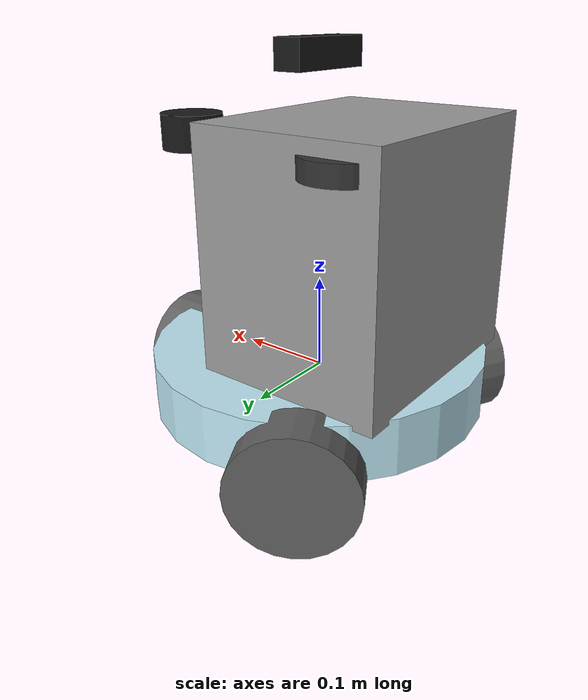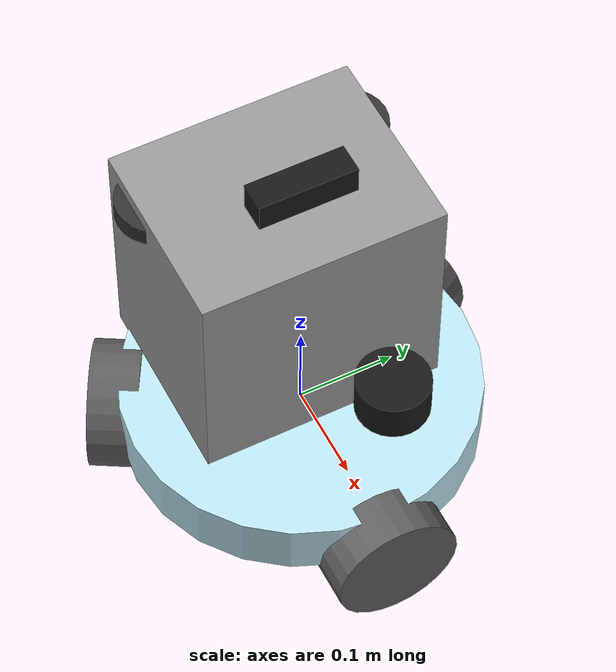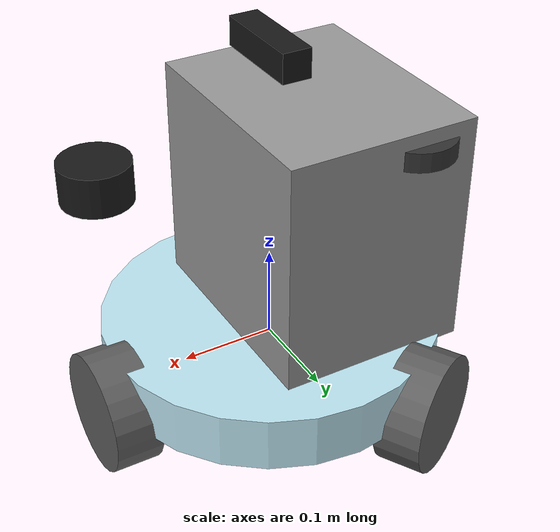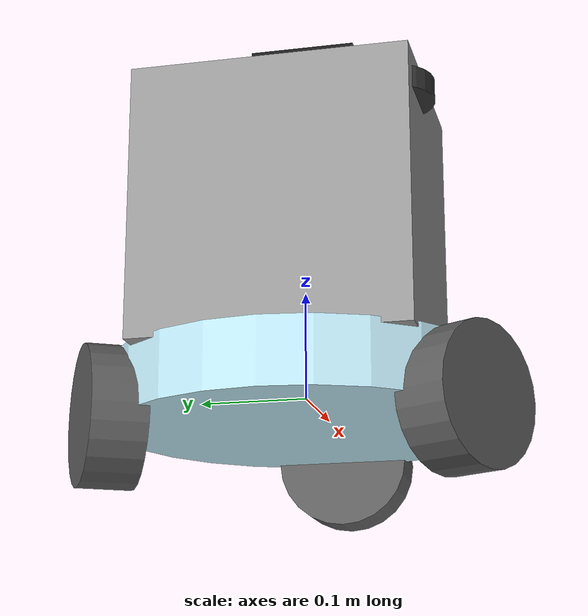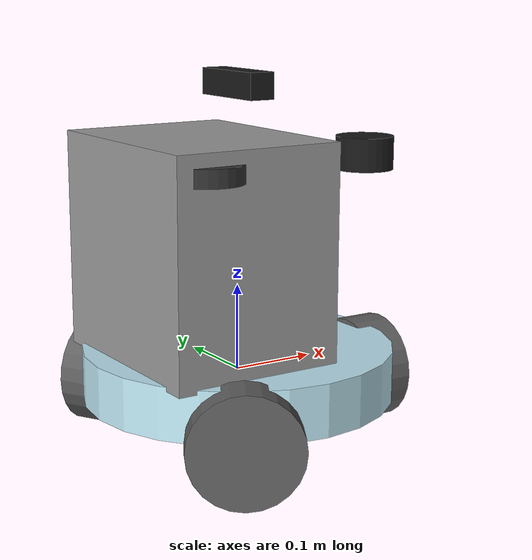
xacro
<?xml version="1.0"?>
<robot xmlns:xacro="http://www.ros.org/wiki/xacro" name="gemini335_robot">

  <!-- Include modular components -->
  <xacro:include filename="modules/common.xacro" />
  <xacro:include filename="modules/chassis_omni.xacro" />
  <xacro:include filename="modules/upper_body.xacro" />
  <xacro:include filename="modules/sensors.xacro" />

  <!-- Assemble the robot -->
  <xacro:chassis_omni />
  <xacro:upper_body parent_link="base_link" />
  <xacro:sensors_suite parent_link="base_link" />

</robot>

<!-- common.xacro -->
<robot xmlns:xacro="http://www.ros.org/wiki/xacro">
  <xacro:macro name="box_inertia" params="m x y z *origin">
    <inertial>
      <xacro:insert_block name="origin" />
      <mass value="${m}"/>
      <inertia ixx="${m*(y*y+z*z)/12}" ixy="0" ixz="0" iyy="${m*(x*x+z*z)/12}" iyz="0" izz="${m*(x*x+y*y)/12}"/>
    </inertial>
  </xacro:macro>

  <xacro:macro name="cylinder_inertia" params="m r h *origin">
    <inertial>
      <xacro:insert_block name="origin" />
      <mass value="${m}"/>
      <inertia ixx="${m*(3*r*r+h*h)/12}" ixy="0" ixz="0" iyy="${m*(3*r*r+h*h)/12}" iyz="0" izz="${m*r*r/2}"/>
    </inertial>
  </xacro:macro>
</robot>

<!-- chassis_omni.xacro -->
<robot xmlns:xacro="http://www.ros.org/wiki/xacro">

  <xacro:macro name="chassis_omni">
    <!-- Base Link -->
    <link name="base_link">
      <visual>
        <origin xyz="0 0 0" rpy="0 0 0" />
        <geometry>
          <cylinder radius="0.18" length="0.06"/>
        </geometry>
        <material name="chassis_color">
          <color rgba="0.74 0.90 0.95 1" />
        </material>
      </visual>
      <collision>
        <origin xyz="0 0 0" rpy="0 0 0" />
        <geometry>
          <cylinder radius="0.18" length="0.06"/>
        </geometry>
      </collision>
      <inertial>
        <origin xyz="-0.0098 0 0.0213" rpy="0 0 0" />
        <mass value="1.057" />
        <inertia ixx="0.00507" ixy="-1.75e-06" ixz="7.54e-07" iyy="0.00482" iyz="6.26e-09" izz="0.00972" />
      </inertial>
    </link>

    <!-- Wheel Macro -->
    <xacro:macro name="omni_wheel" params="prefix origin_xyz origin_rpy">
      <link name="${prefix}_link">
        <visual>
          <origin xyz="0 0 0" rpy="1.5708 0 0"/>
          <geometry>
            <cylinder radius="0.0636" length="0.05"/>
          </geometry>
          <material name="wheel_color">
            <color rgba="0.37 0.37 0.37 1" />
          </material>
        </visual>
        <collision>
          <!-- Cylinder aligned along Y axis -->
          <origin xyz="0 0 0" rpy="1.5708 0 0"/>
          <geometry>
            <cylinder radius="0.0636" length="0.05"/>
          </geometry>
        </collision>
        <inertial>
          <origin xyz="0 0.031 0" rpy="0 0 0" />
          <mass value="0.0276" />
          <inertia ixx="5.37e-06" ixy="0" ixz="0" iyy="7.33e-06" iyz="0" izz="5.37e-06" />
        </inertial>
      </link>
      <joint name="${prefix}_joint" type="continuous">
        <origin xyz="${origin_xyz}" rpy="${origin_rpy}" />
        <parent link="base_link" />
        <child link="${prefix}_link" />
        <axis xyz="0 -1 0" />
      </joint>
    </xacro:macro>

    <xacro:omni_wheel prefix="quanxiang_wheel1" origin_xyz="0.18229 -0.00010361 -0.028" origin_rpy="0 0 1.5708" />
    <xacro:omni_wheel prefix="quanxiang_wheel2" origin_xyz="-0.090865 0.1576 -0.028" origin_rpy="0 0 -2.618" />
    <xacro:omni_wheel prefix="quanxiang_wheel3" origin_xyz="-0.090865 -0.15781 -0.028" origin_rpy="0 0 -0.5236" />

  </xacro:macro>
</robot>

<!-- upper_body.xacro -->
<robot xmlns:xacro="http://www.ros.org/wiki/xacro">

  <xacro:macro name="upper_body" params="parent_link">
    <!-- Main Frame / Torso -->
    <link name="torso_link">
      <visual>
        <origin xyz="-0.05 0 0.15" rpy="0 0 0"/>
        <geometry>
          <box size="0.2 0.25 0.25"/>
        </geometry>
        <material name="frame_color">
          <color rgba="0.6 0.6 0.6 1" />
        </material>
      </visual>
      <collision>
        <!-- Safe box approximation to cover the main structure -->
        <origin xyz="-0.05 0 0.15" rpy="0 0 0"/>
        <geometry>
          <box size="0.2 0.25 0.25"/>
        </geometry>
      </collision>
      <xacro:box_inertia m="5.0" x="0.2" y="0.25" z="0.25">
        <origin xyz="-0.05 0 0.15" rpy="0 0 0"/>
      </xacro:box_inertia>
    </link>
    <joint name="torso_joint" type="fixed">
      <parent link="${parent_link}"/>
      <child link="torso_link"/>
      <origin xyz="0 0 0" rpy="0 0 0"/>
    </joint>

    <gazebo reference="torso_link">
      <material>Gazebo/Grey</material>
    </gazebo>

    <!-- Arm Base 1 (Left) -->
    <link name="arm_base_left_link">
      <visual>
        <geometry>
          <cylinder radius="0.04" length="0.02"/>
        </geometry>
        <material name="arm_color"><color rgba="0.2 0.2 0.2 1"/></material>
      </visual>
      <collision>
        <geometry>
          <cylinder radius="0.04" length="0.02"/>
        </geometry>
      </collision>
      <xacro:cylinder_inertia m="1.0" r="0.04" h="0.02">
        <origin xyz="0 0 0" rpy="0 0 0"/>
      </xacro:cylinder_inertia>
    </link>
    <joint name="arm_base_left_joint" type="fixed">
      <parent link="torso_link"/>
      <child link="arm_base_left_link"/>
      <!-- Symmetrical circular holes on the frame, approximate pos -->
      <origin xyz="-0.1 0.1 0.25" rpy="0 0 0"/>
    </joint>

    <gazebo reference="arm_base_left_link">
      <material>Gazebo/FlatBlack</material>
    </gazebo>

    <!-- Arm Base 2 (Right) -->
    <link name="arm_base_right_link">
      <visual>
        <geometry>
          <cylinder radius="0.04" length="0.02"/>
        </geometry>
        <material name="arm_color"><color rgba="0.2 0.2 0.2 1"/></material>
      </visual>
      <collision>
        <geometry>
          <cylinder radius="0.04" length="0.02"/>
        </geometry>
      </collision>
      <xacro:cylinder_inertia m="1.0" r="0.04" h="0.02">
        <origin xyz="0 0 0" rpy="0 0 0"/>
      </xacro:cylinder_inertia>
    </link>
    <joint name="arm_base_right_joint" type="fixed">
      <parent link="torso_link"/>
      <child link="arm_base_right_link"/>
      <origin xyz="-0.1 -0.1 0.25" rpy="0 0 0"/>
    </joint>

    <gazebo reference="arm_base_right_link">
      <material>Gazebo/FlatBlack</material>
    </gazebo>

  </xacro:macro>
</robot>

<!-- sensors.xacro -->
<robot xmlns:xacro="http://www.ros.org/wiki/xacro">

  <xacro:macro name="sensors_suite" params="parent_link">
    <!-- Chassis LiDAR -->
    <link name="laser_link">
      <visual>
        <geometry>
          <cylinder radius="0.035" length="0.04"/>
        </geometry>
        <material name="black"><color rgba="0.1 0.1 0.1 1"/></material>
      </visual>
      <collision>
        <geometry>
          <cylinder radius="0.035" length="0.04"/>
        </geometry>
      </collision>
      <xacro:cylinder_inertia m="0.2" r="0.035" h="0.04">
        <origin xyz="0 0 0" rpy="0 0 0"/>
      </xacro:cylinder_inertia>
    </link>
    <joint name="laser_joint" type="fixed">
      <parent link="${parent_link}"/>
      <child link="laser_link"/>
      <origin xyz="0.18 0 0.24" rpy="0 0 3.1415926"/>
    </joint>

    <link name="imu_link" />
    <joint name="imu_joint" type="fixed">
      <parent link="${parent_link}"/>
      <child link="imu_link"/>
      <origin xyz="-0.07 0.02 0.145" rpy="0 0 0"/>
    </joint>

    <!-- Gemini 335 Camera -->
    <!-- Positioned higher up, assuming at the top front of the frame -->
    <link name="gemini335_camera_link">
      <visual>
        <geometry><box size="0.03 0.1 0.03"/></geometry>
        <material name="black"><color rgba="0.1 0.1 0.1 1"/></material>
      </visual>
      <collision>
        <geometry><box size="0.03 0.1 0.03"/></geometry>
      </collision>
      <xacro:box_inertia m="0.15" x="0.03" y="0.1" z="0.03">
         <origin xyz="0 0 0" rpy="0 0 0"/>
      </xacro:box_inertia>
    </link>
    <joint name="gemini335_mount_joint" type="fixed">
      <parent link="${parent_link}"/>
      <child link="gemini335_camera_link"/>
      <origin xyz="0 0 0.33" rpy="0 0 0"/>
    </joint>

    <!-- Optical frames for Gemini -->
    <link name="gemini335_depth_optical_frame"/>
    <joint name="gemini335_depth_optical_joint" type="fixed">
      <parent link="gemini335_camera_link"/>
      <child link="gemini335_depth_optical_frame"/>
      <origin xyz="0 0 0" rpy="-1.5708 0 -1.5708"/>
    </joint>

  </xacro:macro>
</robot>
